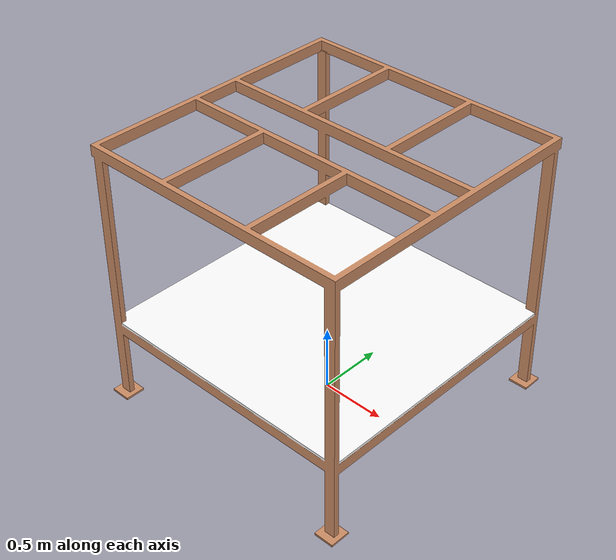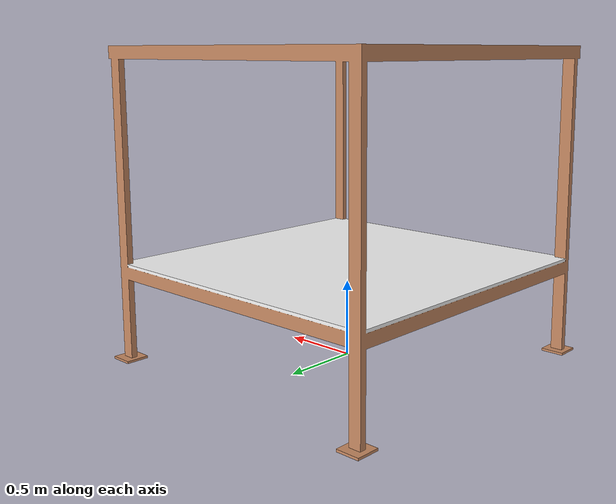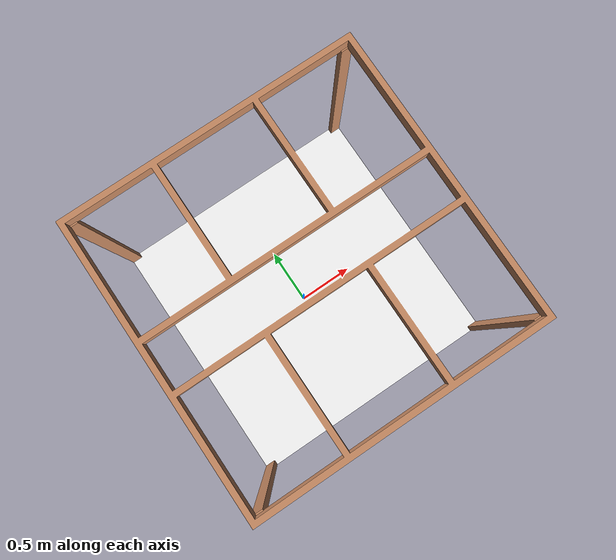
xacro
<?xml version="1.0" ?>
<robot name="cell" xmlns:xacro="http://ros.org/wiki/xacro">

  <!-- World frame (for Gazebo) -->
  <link name="cell/world"/>

  <!-- Cell fixed to world frame  -->
  <joint name="base_joint" type="fixed">
      <origin xyz="0 0 0" rpy="0 0 0" />
      <parent link="cell/world" />
      <child link="cell_base"/>
  </joint>

  <link name="cell_base">
      <inertial>
          <mass value="500" />
          <origin xyz="0 0 0" rpy="0 0 0" />
          <inertia ixx="1" ixy="0" ixz="0" iyy="1" iyz="0" izz="1" />
      </inertial>
      <visual name="visual">
        <geometry>
          <mesh filename="package://kuka_control/models/cell/meshes/AgilusStructure.dae"/>
        </geometry>
      </visual>
      <collision name="collision">
        <geometry>
          <mesh filename="package://kuka_control/models/cell/meshes/AgilusStructure.dae"/>
        </geometry>
      </collision>
  </link>

  <!-- Cell fixed to world frame  -->
  <joint name="link_joint" type="fixed">
      <origin xyz="0.0 0.0 0.64" rpy="0 0 0" />
      <parent link="cell_base" />
      <child link="cell_link"/>
  </joint>

  <link name="cell_link"/>

  <joint name="link_joint_cam" type="fixed">
      <origin xyz="0.0 0.0 0.0" rpy="${1.05*3.1416/180} 0 0" />
      <parent link="cell_link" />
      <child link="cell_cam"/>
  </joint>

  <link name="cell_cam"/>

  <gazebo>
    <static>true</static>
  </gazebo>

</robot>
